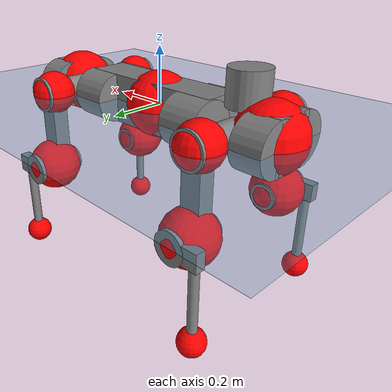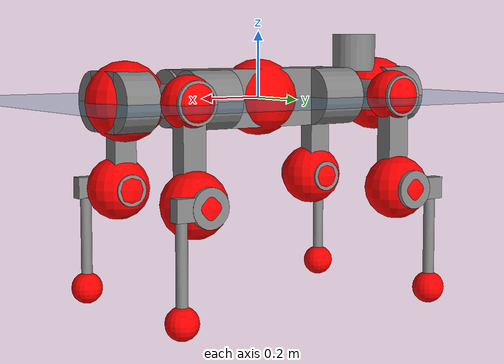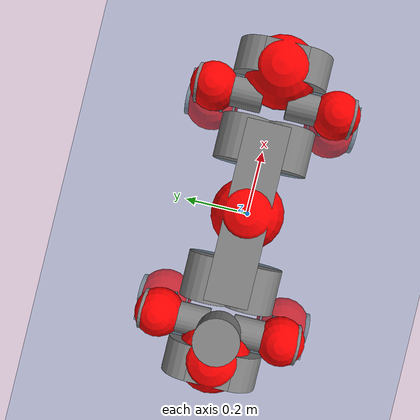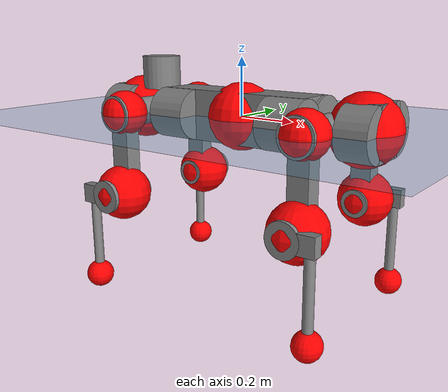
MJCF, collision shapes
<mujoco model="anymal_c">
  <compiler angle="radian" assetdir="assets" balanceinertia="true" inertiafromgeom="false"/>

  <option timestep="0.005" density="1.2" viscosity="2e-05"/>

  <size nkey="1"/>

  <visual>
    <quality shadowsize="8192"/>
    <map shadowclip="0.5"/>
  </visual>

  <default>
    <default class="/">
      <material specular="0" shininess="0.25"/>
      <geom contype="0" conaffinity="0" group="1" solref="-1000 -80"/>
      <site size="0.01 0.005 0.005" group="5"/>
      <general forcelimited="true" forcerange="-80 80" biastype="affine" gainprm="80" biasprm="0 -80 -2"/>
      <default class="anymal_c">
        <joint armature="0.01" damping="0.01" frictionloss="0.1"/>
        <default class="visual">
          <geom type="mesh" group="2"/>
          <default class="visual_zflip"/>
        </default>
        <default class="collision">
          <geom type="cylinder" group="3"/>
          <default class="foot">
            <geom size="0.03 0 0" type="sphere" condim="6" priority="1" friction="0.8 0.02 0.01" solimp="0.015 1 0.03"/>
          </default>
        </default>
      </default>
      <default class="reward_collision_sphere">
        <geom group="5" rgba="1 0 0 1"/>
      </default>
    </default>
  </default>

  <asset>
    <texture type="skybox" colorspace="auto" name="//unnamed_texture_0" builtin="gradient" rgb1="0.95 0.95 0.95" rgb2="0.95 0.95 0.95" width="100" height="600"/>
    <texture type="2d" colorspace="auto" name="texplane" builtin="checker" rgb1="0.345 0.575 0.748" rgb2="0.345 0.575 0.748" markrgb="1 1 1" width="512" height="512"/>
    <texture type="2d" colorspace="linear" name="base" file="base.png"/>
    <texture type="2d" colorspace="linear" name="top_shell" file="top_shell.png"/>
    <texture type="2d" colorspace="linear" name="bottom_shell" file="bottom_shell.png"/>
    <texture type="2d" colorspace="linear" name="remote" file="remote.png"/>
    <texture type="2d" colorspace="linear" name="hatch" file="hatch.png"/>
    <texture type="2d" colorspace="linear" name="handle" file="handle.png"/>
    <texture type="2d" colorspace="linear" name="face" file="face.png"/>
    <texture type="2d" colorspace="linear" name="battery" file="battery.png"/>
    <texture type="2d" colorspace="linear" name="lidar_cage" file="lidar_cage.png"/>
    <texture type="2d" colorspace="linear" name="depth_camera" file="depth_camera.png"/>
    <texture type="2d" colorspace="linear" name="wide_angle_camera" file="wide_angle_camera.png"/>
    <texture type="2d" colorspace="linear" name="lidar" file="lidar.png"/>
    <texture type="2d" colorspace="linear" name="drive" file="drive.png"/>
    <texture type="2d" colorspace="linear" name="hip_l" file="hip_l.png"/>
    <texture type="2d" colorspace="linear" name="shank_l" file="shank_l.png"/>
    <texture type="2d" colorspace="linear" name="foot" file="foot.png"/>
    <texture type="2d" colorspace="linear" name="thigh" file="thigh.png"/>
    <texture type="2d" colorspace="linear" name="shank_r" file="shank_r.png"/>
    <texture type="2d" colorspace="linear" name="hip_r" file="hip_r.png"/>
    <material name="MatPlane" class="/" texture="texplane" texuniform="true" texrepeat="2 2" specular="0.9" shininess="0.5"/>
    <material name="black_plastic" class="/" rgba="0.007 0.007 0.007 1"/>
    <material name="green" class="/" rgba="0.052 0.178 0.033 1"/>
    <material name="red" class="/" rgba="0.178 0.006 0.005 1"/>
    <material name="yellow" class="/" rgba="0.178 0.119 0.006 1"/>
    <material name="lwl" class="/" rgba="0.8 0.8 0.8 1"/>
    <material name="base" class="/" texture="base"/>
    <material name="top_shell" class="/" texture="top_shell"/>
    <material name="bottom_shell" class="/" texture="bottom_shell"/>
    <material name="hip_l" class="/" texture="hip_l"/>
    <material name="thigh" class="/" texture="thigh"/>
    <material name="shank_l" class="/" texture="shank_l"/>
    <material name="foot" class="/" texture="foot"/>
    <material name="hip_r" class="/" texture="hip_r"/>
    <material name="shank" class="/" texture="shank_r"/>
    <material name="hatch" class="/" texture="hatch"/>
    <material name="remote" class="/" texture="remote"/>
    <material name="handle" class="/" texture="handle"/>
    <material name="face" class="/" texture="face"/>
    <material name="depth_camera" class="/" texture="depth_camera"/>
    <material name="wide_angle_camera" class="/" texture="wide_angle_camera"/>
    <material name="battery" class="/" texture="battery"/>
    <material name="lidar_cage" class="/" texture="lidar_cage"/>
    <material name="lidar" class="/" texture="lidar"/>
    <material name="drive" class="/" texture="drive"/>
    <mesh name="base_0" class="/" file="base_0.obj"/>
    <mesh name="base_1" class="/" file="base_1.obj"/>
    <mesh name="base_2" class="/" file="base_2.obj"/>
    <mesh name="base_3" class="/" file="base_3.obj"/>
    <mesh name="base_4" class="/" file="base_4.obj"/>
    <mesh name="base_5" class="/" file="base_5.obj"/>
    <mesh name="top_shell" class="/" file="top_shell.obj"/>
    <mesh name="bottom_shell" class="/" file="bottom_shell.obj"/>
    <mesh name="remote" class="/" file="remote.obj"/>
    <mesh name="handle" class="/" file="handle.obj"/>
    <mesh name="face" class="/" file="face.obj"/>
    <mesh name="wide_angle_camera" class="/" file="wide_angle_camera.obj"/>
    <mesh name="depth_camera" class="/" file="depth_camera.obj"/>
    <mesh name="battery" class="/" file="battery.obj"/>
    <mesh name="lidar_cage" class="/" file="lidar_cage.obj"/>
    <mesh name="lidar" class="/" file="lidar.obj"/>
    <mesh name="drive" class="/" file="drive.obj"/>
    <mesh name="hip_l" class="/" file="hip_l.obj"/>
    <mesh name="thigh" class="/" file="thigh.obj"/>
    <mesh name="shank_l" class="/" file="shank_l.obj"/>
    <mesh name="foot" class="/" file="foot.obj"/>
    <mesh name="hip_r" class="/" file="hip_r.obj"/>
    <mesh name="hatch" class="/" file="hatch.obj"/>
    <mesh name="shank_r" class="/" file="shank_r.obj"/>
  </asset>

  <worldbody>
    <geom name="floor" class="/" size="100 100 0.125" type="plane" group="0" material="MatPlane"/>
    <light name="toplight_shadow" class="/" pos="0 0 5" dir="0.0990148 0.0990148 -0.990148" type="directional" ambient="0.04 0.04 0.04" diffuse="0.55 0.55 0.55" specular="0.12 0.12 0.12"/>
    <light name="toplight_fill" class="/" pos="0 0 5" dir="0.0990148 0.0990148 -0.990148" type="directional" castshadow="false" ambient="0.04 0.04 0.04" diffuse="0.3 0.3 0.3" specular="0.08 0.08 0.08"/>
    <body name="trunk" childclass="anymal_c" pos="0.000508709 0.000475771 0.000942361" quat="1 -0.000194932 0.00031727 -0.000135436">
      <inertial pos="0.00336174 -0.000921009 0.0490358" quat="0.500131 0.499691 0.499766 0.500412" mass="17.7452" diaginertia="0.724263 0.381992 0.215391"/>
      <joint name="//unnamed_joint_0" type="free" armature="0" damping="0" frictionloss="0"/>
      <geom name="//unnamed_geom_1" class="visual" material="green" mesh="base_0"/>
      <geom name="//unnamed_geom_2" class="visual" material="yellow" mesh="base_1"/>
      <geom name="//unnamed_geom_3" class="visual" material="red" mesh="base_2"/>
      <geom name="//unnamed_geom_4" class="visual" material="black_plastic" mesh="base_3"/>
      <geom name="//unnamed_geom_5" class="visual" material="lwl" mesh="base_4"/>
      <geom name="//unnamed_geom_6" class="visual" material="base" mesh="base_5"/>
      <geom name="trunk_1" class="collision" size="0.282115 0.0680966 0.0875528" type="box"/>
      <geom name="trunk_2" class="collision" size="0.0875528 0.0705286" pos="0.222028 0.063313 0" quat="0.707107 0 0.707107 0"/>
      <geom name="trunk_3" class="collision" size="0.0875528 0.0705286" pos="-0.222028 0.063313 0" quat="0.707107 0 0.707107 0"/>
      <geom name="trunk_4" class="collision" size="0.0875528 0.0705286" pos="0.222028 -0.063313 0" quat="0.707107 0 0.707107 0"/>
      <geom name="trunk_5" class="collision" size="0.0875528 0.0705286" pos="-0.222028 -0.063313 0" quat="0.707107 0 0.707107 0"/>
      <geom name="//unnamed_geom_12" class="visual" material="top_shell" mesh="top_shell"/>
      <geom name="//unnamed_geom_13" class="visual" material="bottom_shell" mesh="bottom_shell"/>
      <geom name="//unnamed_geom_14" class="visual" material="remote" mesh="remote"/>
      <geom name="//unnamed_geom_15" class="visual" material="handle" mesh="handle"/>
      <geom name="//unnamed_geom_16" class="visual" pos="0.42313 0 0" quat="1 0 0 0" material="face" mesh="face"/>
      <geom name="trunk_6" class="collision" size="0.0535045 0.0680966 0.0875528" pos="0.479275 0 0" type="box"/>
      <geom name="//unnamed_geom_18" class="collision" size="0.0875528 0.0535045" pos="0.479275 0.063313 0" quat="0.707107 0 0.707107 0"/>
      <geom name="//unnamed_geom_19" class="collision" size="0.0875528 0.0535045" pos="0.479275 -0.063313 0" quat="0.707107 0 0.707107 0"/>
      <geom name="//unnamed_geom_20" class="visual" pos="0.47126 0 -0.0287892" quat="0.965926 0 0.258819 0" material="depth_camera" mesh="depth_camera"/>
      <geom name="//unnamed_geom_21" class="visual" pos="0.523681 0 0.0148672" material="wide_angle_camera" mesh="wide_angle_camera"/>
      <geom name="//unnamed_geom_22" class="visual_zflip" pos="-0.42313 0 0" quat="0 0 0 1" material="face" mesh="face"/>
      <geom name="trunk_7" class="collision" size="0.0535045 0.0680966 0.0875528" pos="-0.479275 0 0" quat="0 0 0 1" type="box"/>
      <geom name="//unnamed_geom_24" class="collision" size="0.0875528 0.0535045" pos="-0.479275 -0.063313 0" quat="0 -0.707107 0 0.707107"/>
      <geom name="//unnamed_geom_25" class="collision" size="0.0875528 0.0535045" pos="-0.479275 0.063313 0" quat="0 -0.707107 0 0.707107"/>
      <geom name="//unnamed_geom_26" class="visual" pos="-0.47126 0 -0.0287892" quat="0 -0.258819 0 0.965926" material="depth_camera" mesh="depth_camera"/>
      <geom name="//unnamed_geom_27" class="visual_zflip" pos="-0.523681 0 0.0148672" quat="0 0 0 1" material="wide_angle_camera" mesh="wide_angle_camera"/>
      <geom name="//unnamed_geom_28" class="visual" material="battery" mesh="battery"/>
      <geom name="//unnamed_geom_29" class="visual" pos="0 0.067628 0.029061" quat="0.683013 -0.183013 0.183013 0.683013" material="depth_camera" mesh="depth_camera"/>
      <geom name="//unnamed_geom_30" class="visual" pos="0 -0.067628 0.029061" quat="0.683013 0.183013 0.183013 -0.683013" material="depth_camera" mesh="depth_camera"/>
      <geom name="//unnamed_geom_31" class="visual" pos="-0.371578 0 0.0729955" quat="1 0 0 0" material="lidar_cage" mesh="lidar_cage"/>
      <geom name="trunk_8" class="collision" size="0.0680966 0.0583685" pos="-0.371578 0 0.132584"/>
      <geom name="//unnamed_geom_33" class="visual" pos="-0.371578 -4.57104e-05 0.141224" quat="0.707107 0 0 -0.707107" material="lidar" mesh="lidar"/>
      <geom name="//unnamed_geom_34" class="visual" pos="0.306144 0.0940965 -1.52948e-09" quat="0.258819 0.965926 0 0" material="drive" mesh="drive"/>
      <geom name="//unnamed_geom_35" class="visual" pos="0.306144 -0.0940965 1.52948e-09" quat="0.258819 -0.965926 0 0" material="drive" mesh="drive"/>
      <geom name="//unnamed_geom_36" class="visual" pos="-0.306144 0.0940965 1.52948e-09" quat="0 0 0.965926 -0.258819" material="drive" mesh="drive"/>
      <geom name="//unnamed_geom_37" class="visual" pos="-0.306144 -0.0940965 -1.52948e-09" quat="0 0 -0.965926 -0.258819" material="drive" mesh="drive"/>
      <geom name="//unnamed_geom_38" class="visual" pos="0.118415 0 0.0724989" quat="1 0 0 0" material="hatch" mesh="hatch"/>
      <geom name="//unnamed_geom_39" class="reward_collision_sphere" size="0.116737"/>
      <geom name="//unnamed_geom_40" class="reward_collision_sphere" size="0.116737" pos="0.459369 0 0"/>
      <geom name="//unnamed_geom_41" class="reward_collision_sphere" size="0.116737" pos="-0.459369 0 0"/>
      <site name="imu" pos="0.249309 5.98795e-05 0.0485578" size="0.00972809"/>
      <camera name="track" pos="0 -1.80894 0" quat="0.707107 0.707107 0 0" mode="trackcom"/>
      <camera name="ego_camera" pos="0.459369 0 -0.0397254" quat="-0.5 -0.5 0.5 0.5"/>
      <body name="LF_HIP" pos="0.30647 0.0939674 0.000711781" quat="0.258546 0.965999 0.000449457 -0.000362116">
        <inertial pos="0.0588337 -0.0136693 -0.00813759" quat="-0.128917 0.709699 -0.133354 0.679651" mass="2.58903" diaginertia="0.00656867 0.00301004 0.00317562"/>
        <joint name="LF_HAA" pos="0 0 0" axis="0.999998 -0.00148859 0.00162141" range="-0.703952 0.489868" armature="0.00958418" damping="0.0111884" frictionloss="0.0947827"/>
        <geom name="//unnamed_geom_42" class="visual" pos="0 -8.99725e-05 1.47779e-05" quat="0.258819 -0.965926 0 0" material="hip_l" mesh="hip_l"/>
        <geom name="//unnamed_geom_43" class="visual" pos="0.0611471 -0.0725923 -0.042567" quat="0.183013 -0.683013 0.683013 0.183013" material="drive" mesh="drive"/>
        <geom name="//unnamed_geom_44" class="collision" size="0.0486404 0.0680966" pos="0.0611471 -0.0108173 -0.0068576" quat="-0.353553 -0.612372 0.612372 -0.353553"/>
        <body name="LF_THIGH" pos="0.0614947 -0.0661418 -0.0401588" quat="0.182983 -0.682965 0.68305 0.183082">
          <inertial pos="0.0318832 -0.000727729 -0.245457" quat="0.993124 -0.0050349 -0.0808651 0.0845025" mass="2.79785" diaginertia="0.0336164 0.0182361 0.00405124"/>
          <joint name="LF_HFE" pos="0 0 0" axis="0.999997 -0.000819732 -0.00236155" range="-3.14212 3.16347" armature="0.0100923" damping="0.00137785" frictionloss="0.0975007"/>
          <geom name="//unnamed_geom_45" class="visual" pos="0.00231489 3.64772e-06 0" quat="0.707107 0 0 -0.707107" material="thigh" mesh="thigh"/>
          <geom name="//unnamed_geom_46" class="collision" size="0.0632326 0.0389124" pos="0.0408328 0 0" quat="0.5 0.5 -0.5 -0.5"/>
          <geom name="//unnamed_geom_47" class="collision" size="0.0364803 0.0291843 0.137472" pos="0.0306246 0 -0.140344" quat="0.707107 0 0 -0.707107" type="box"/>
          <geom name="//unnamed_geom_48" class="visual" pos="0.102388 0 -0.283044" quat="1 0 0 0" material="drive" mesh="drive"/>
          <geom name="//unnamed_geom_49" class="collision" size="0.0486404 0.0680966" pos="0.0309308 0 -0.283044" quat="0.707107 0 0.707107 0"/>
          <geom name="//unnamed_geom_50" class="reward_collision_sphere" size="0.0778247" pos="0.0255205 0 0"/>
          <body name="LF_SHANK" pos="0.104005 0.000816377 -0.28358" quat="1 -9.48012e-06 -2.26517e-06 -9.74276e-07">
            <inertial pos="0.00557979 -0.0544607 -0.0807764" quat="0.992846 -0.116628 -0.00129125 -0.0255573" mass="0.546544" diaginertia="0.0111749 0.00556722 0.00107887"/>
            <joint name="LF_KFE" pos="0 0 0" axis="1 0.000190869 -0.000285775" range="-3.15456 3.1299" armature="0.00970407" damping="0.00967041" frictionloss="0.0954181"/>
            <geom name="//unnamed_geom_51" class="visual" pos="0.000754834 0.00402482 0" quat="0.707107 0 0 -0.707107" material="shank_l" mesh="shank_l"/>
            <geom name="LF_kfe_act" class="collision" size="0.0583685 0.0194562" pos="0.0204164 0 0" quat="0.5 0.5 -0.5 -0.5"/>
            <geom name="//unnamed_geom_53" class="collision" size="0.0559355 0.0328323 0.0184834" pos="0.0204164 -0.0520062 0" quat="0.5 0.5 -0.5 -0.5" type="box"/>
            <geom name="//unnamed_geom_54" class="visual" pos="0.0133215 -0.0782512 -0.33565" quat="0.382683 0 0 -0.92388" material="foot" mesh="foot"/>
            <geom name="LF_calf" class="collision" size="0.0170242 0.137411" pos="0.0133217 -0.0795482 -0.167825" quat="0.707107 0 0 -0.707107"/>
            <geom name="LF_foot" class="foot" size="0.0285778" pos="0.0133217 -0.0795482 -0.313305" quat="0.707107 0 0 -0.707107"/>
            <geom name="//unnamed_geom_57" class="reward_collision_sphere" size="0.0972809" pos="-0.051041 0 0"/>
            <geom name="//unnamed_geom_58" class="reward_collision_sphere" size="0.0486404" pos="0.0133217 -0.0795482 -0.313305"/>
            <site name="LF_foot" class="foot" pos="0.0133217 -0.0795482 -0.313305" quat="0.707107 0 0 -0.707107" size="0.00972809"/>
          </body>
        </body>
      </body>
      <body name="RF_HIP" pos="0.305739 -0.0957261 0.000984877" quat="0.258812 -0.965928 8.58e-06 1.46696e-07">
        <inertial pos="0.0578196 0.0149396 -0.00836169" quat="0.139183 0.67846 0.127166 0.710034" mass="2.59624" diaginertia="0.00665336 0.00298665 0.0032386"/>
        <joint name="RF_HAA" pos="0 0 0" axis="0.999998 -0.00129967 0.00161032" range="-0.501463 0.716373" armature="0.00970994" damping="0.00874758" frictionloss="0.0954131"/>
        <geom name="//unnamed_geom_59" class="visual" pos="0 8.99718e-05 1.47779e-05" quat="0.258819 0.965926 0 0" material="hip_r" mesh="hip_r"/>
        <geom name="//unnamed_geom_60" class="visual" pos="0.0611471 0.0725923 -0.042567" quat="0.183013 0.683013 0.683013 -0.183013" material="drive" mesh="drive"/>
        <geom name="//unnamed_geom_61" class="collision" size="0.0486404 0.0680966" pos="0.0611471 0.0108173 -0.0068576" quat="-0.353553 0.612372 0.612372 0.353553"/>
        <body name="RF_THIGH" pos="0.0605615 0.0652673 -0.0416006" quat="0.183 0.683019 0.68301 -0.183015">
          <inertial pos="0.0316307 -0.00012326 -0.244787" quat="0.992614 0.000896508 -0.0852222 0.0863406" mass="2.85303" diaginertia="0.0343308 0.0182974 0.00408929"/>
          <joint name="RF_HFE" pos="0 0 0" axis="1 0.000872849 0.000307061" stiffness="0.00566654" range="-3.16125 3.13843" armature="0.00977637" damping="0.0095112" frictionloss="0.0989859"/>
          <geom name="//unnamed_geom_62" class="visual" pos="0.00231489 3.64772e-06 0" quat="0.707107 0 0 -0.707107" material="thigh" mesh="thigh"/>
          <geom name="//unnamed_geom_63" class="collision" size="0.0632326 0.0389124" pos="0.0408328 0 0" quat="0.5 0.5 0.5 0.5"/>
          <geom name="//unnamed_geom_64" class="collision" size="0.0364803 0.0291843 0.137472" pos="0.0306246 0 -0.140344" quat="0.707107 0 0 0.707107" type="box"/>
          <geom name="//unnamed_geom_65" class="visual" pos="0.102388 0 -0.283044" quat="1 0 0 0" material="drive" mesh="drive"/>
          <geom name="//unnamed_geom_66" class="collision" size="0.0486404 0.0680966" pos="0.0309308 0 -0.283044" quat="0.707107 0 0.707107 0"/>
          <geom name="//unnamed_geom_67" class="reward_collision_sphere" size="0.0778247" pos="0.0255205 0 0"/>
          <body name="RF_SHANK" pos="0.101999 0.000536963 -0.282939" quat="1 -1.80227e-06 1.74306e-05 -6.16097e-06">
            <inertial pos="0.00617278 0.0551102 -0.0782852" quat="0.992836 0.115733 -0.00342758 0.029512" mass="0.532241" diaginertia="0.010937 0.00557831 0.00105092"/>
            <joint name="RF_KFE" pos="0 0 0" axis="0.999999 -0.000426056 0.001478" range="-3.1364 3.15582" armature="0.00953812" damping="0.00855093" frictionloss="0.0974585"/>
            <geom name="//unnamed_geom_68" class="visual" pos="0.00075483 -0.00402481 0" quat="0.707107 0 0 0.707107" material="shank" mesh="shank_r"/>
            <geom name="RF_kfe_act" class="collision" size="0.0583685 0.0194562" pos="0.0204164 0 0" quat="0.5 0.5 0.5 0.5"/>
            <geom name="//unnamed_geom_70" class="collision" size="0.0559355 0.0328323 0.0184834" pos="0.0204164 0.0520062 0" quat="0.5 0.5 0.5 0.5" type="box"/>
            <geom name="//unnamed_geom_71" class="visual" pos="0.0133219 0.0782512 -0.33565" quat="0.382683 0 0 0.92388" material="foot" mesh="foot"/>
            <geom name="RF_calf" class="collision" size="0.0170242 0.137411" pos="0.0133217 0.0795482 -0.167825" quat="0.707107 0 0 0.707107"/>
            <geom name="RF_foot" class="foot" size="0.0292336" pos="0.0133217 0.0795482 -0.313305" quat="0.707107 0 0 0.707107"/>
            <geom name="//unnamed_geom_74" class="reward_collision_sphere" size="0.0972809" pos="-0.051041 0 0"/>
            <geom name="//unnamed_geom_75" class="reward_collision_sphere" size="0.0486404" pos="0.0133217 0.0795482 -0.313305"/>
            <site name="RF_foot" class="foot" pos="0.0133217 0.0795482 -0.313305" quat="0.707107 0 0 0.707107" size="0.00972809"/>
          </body>
        </body>
      </body>
      <body name="LH_HIP" pos="-0.306098 0.0950094 -0.000239824" quat="7.18146e-06 -3.01934e-05 0.965933 -0.258793">
        <inertial pos="0.058154 0.0135931 -0.00898023" quat="0.133378 0.679433 0.126954 0.710256" mass="2.5702" diaginertia="0.00649287 0.00298947 0.00316276"/>
        <joint name="LH_HAA" pos="0 0 0" axis="0.999999 0.00102786 0.000160732" range="-0.46792 0.73637" armature="0.00970174" damping="0.012855" frictionloss="0.10043"/>
        <geom name="//unnamed_geom_76" class="visual" pos="0 8.99718e-05 1.47779e-05" quat="-0.258819 -0.965926 0 0" material="hip_r" mesh="hip_r"/>
        <geom name="//unnamed_geom_77" class="visual" pos="0.0611471 0.0725923 -0.042567" quat="0.183013 0.683013 0.683013 -0.183013" material="drive" mesh="drive"/>
        <geom name="//unnamed_geom_78" class="collision" size="0.0486404 0.0680966" pos="0.0611471 0.0108173 -0.0068576" quat="-0.353553 0.612372 0.612372 0.353553"/>
        <body name="LH_THIGH" pos="0.0603325 0.0652315 -0.0415023" quat="0.182941 0.68308 0.682929 -0.183148">
          <inertial pos="0.0310331 0.000380534 -0.245245" quat="0.992662 -0.00392589 -0.0794985 0.0910291" mass="2.78241" diaginertia="0.0328203 0.017867 0.00396853"/>
          <joint name="LH_HFE" pos="0 0 0" axis="0.999994 0.00324249 -0.000990345" stiffness="0.00306973" range="-3.15525 3.13148" armature="0.00944375" damping="0.00698753" frictionloss="0.0972009"/>
          <geom name="//unnamed_geom_79" class="visual" pos="0.00231489 3.64772e-06 0" quat="0.707107 0 0 -0.707107" material="thigh" mesh="thigh"/>
          <geom name="//unnamed_geom_80" class="collision" size="0.0632326 0.0389124" pos="0.0408328 0 0" quat="0.5 0.5 -0.5 -0.5"/>
          <geom name="//unnamed_geom_81" class="collision" size="0.0364803 0.0291843 0.137472" pos="0.0306246 0 -0.140344" quat="0.707107 0 0 -0.707107" type="box"/>
          <geom name="//unnamed_geom_82" class="visual" pos="0.102388 0 -0.283044" quat="1 0 0 0" material="drive" mesh="drive"/>
          <geom name="//unnamed_geom_83" class="collision" size="0.0486404 0.0680966" pos="0.0309308 0 -0.283044" quat="0.707107 0 0.707107 0"/>
          <geom name="//unnamed_geom_84" class="reward_collision_sphere" size="0.0778247" pos="0.0255205 0 0"/>
          <body name="LH_SHANK" pos="0.103131 -0.00136228 -0.28312" quat="1 4.79347e-05 1.69792e-05 5.62892e-05">
            <inertial pos="0.0046458 0.0561935 -0.0807712" quat="0.992942 0.115849 -0.00129937 0.0253835" mass="0.544201" diaginertia="0.0112878 0.00554419 0.00108758"/>
            <joint name="LH_KFE" pos="0 0 0" axis="1 -7.81484e-05 -0.00069624" range="-3.14853 3.14084" armature="0.00999928" damping="0.0119321" frictionloss="0.0929158"/>
            <geom name="//unnamed_geom_85" class="visual" pos="0.00075483 -0.00402481 0" quat="-0.707107 0 0 -0.707107" material="shank" mesh="shank_r"/>
            <geom name="LH_kfe_act" class="collision" size="0.0583685 0.0194562" pos="0.0204164 0 0" quat="0.5 0.5 -0.5 -0.5"/>
            <geom name="//unnamed_geom_87" class="collision" size="0.0559355 0.0328323 0.0184834" pos="0.0204164 0.0520062 0" quat="0.5 0.5 -0.5 -0.5" type="box"/>
            <geom name="//unnamed_geom_88" class="visual" pos="0.0133219 0.0782512 -0.33565" quat="-0.382683 0 0 -0.92388" material="foot" mesh="foot"/>
            <geom name="LH_calf" class="collision" size="0.0170242 0.137411" pos="0.0133217 0.0795482 -0.167825" quat="0.707107 0 0 -0.707107"/>
            <geom name="LH_foot" class="foot" size="0.0309166" pos="0.0133217 0.0795482 -0.313305" quat="0.707107 0 0 -0.707107"/>
            <geom name="//unnamed_geom_91" class="reward_collision_sphere" size="0.0972809" pos="-0.051041 0 0"/>
            <geom name="//unnamed_geom_92" class="reward_collision_sphere" size="0.0486404" pos="0.0133217 0.0795482 -0.313305"/>
            <site name="LH_foot" class="foot" pos="0.0133217 0.0795482 -0.313305" quat="0.707107 0 0 -0.707107" size="0.00972809"/>
          </body>
        </body>
      </body>
      <body name="RH_HIP" pos="-0.306081 -0.0932279 0.000135642" quat="0.000163948 -0.000272826 -0.965942 -0.258757">
        <inertial pos="0.0577631 -0.0134192 -0.00794839" quat="-0.127992 0.709736 -0.135292 0.679403" mass="2.4925" diaginertia="0.00634672 0.00291178 0.00313065"/>
        <joint name="RH_HAA" pos="0 0 0" axis="0.999999 0.000981436 -0.00137319" range="-0.731973 0.492969" armature="0.0101871" damping="0.00755074" frictionloss="0.094839"/>
        <geom name="//unnamed_geom_93" class="visual" pos="0 -8.99725e-05 1.47779e-05" quat="-0.258819 0.965926 0 0" material="hip_l" mesh="hip_l"/>
        <geom name="//unnamed_geom_94" class="visual" pos="0.0611471 -0.0725923 -0.042567" quat="-0.183013 0.683013 -0.683013 -0.183013" material="drive" mesh="drive"/>
        <geom name="//unnamed_geom_95" class="collision" size="0.0486404 0.0680966" pos="0.0611471 -0.0108173 -0.0068576" quat="0.353553 0.612372 -0.612372 0.353553"/>
        <body name="RH_THIGH" pos="0.0613961 -0.0655943 -0.0409996" quat="-0.18303 0.683055 -0.682954 -0.183058">
          <inertial pos="0.032563 -0.000577976 -0.24381" quat="0.993177 -0.00522883 -0.0806223 0.0840914" mass="2.82265" diaginertia="0.0331317 0.0180474 0.00403902"/>
          <joint name="RH_HFE" pos="0 0 0" axis="0.999986 -0.00174707 0.0049312" range="-3.1588 3.15793" armature="0.0095851" damping="0.00783882" frictionloss="0.096762"/>
          <geom name="//unnamed_geom_96" class="visual" pos="0.00231489 3.64772e-06 0" quat="0.707107 0 0 -0.707107" material="thigh" mesh="thigh"/>
          <geom name="//unnamed_geom_97" class="collision" size="0.0632326 0.0389124" pos="0.0408328 0 0" quat="0.5 0.5 0.5 0.5"/>
          <geom name="//unnamed_geom_98" class="collision" size="0.0364803 0.0291843 0.137472" pos="0.0306246 0 -0.140344" quat="0.707107 0 0 0.707107" type="box"/>
          <geom name="//unnamed_geom_99" class="visual" pos="0.102388 0 -0.283044" quat="1 0 0 0" material="drive" mesh="drive"/>
          <geom name="//unnamed_geom_100" class="collision" size="0.0486404 0.0680966" pos="0.0309308 0 -0.283044" quat="0.707107 0 0.707107 0"/>
          <geom name="//unnamed_geom_101" class="reward_collision_sphere" size="0.0778247" pos="0.0255205 0 0"/>
          <body name="RH_SHANK" pos="0.102926 0.000750469 -0.283194" quat="1 4.03868e-06 -0.000211187 5.77284e-05">
            <inertial pos="0.00516931 -0.0552402 -0.0800615" quat="0.993122 -0.114719 -0.000197205 -0.0234187" mass="0.548484" diaginertia="0.0113062 0.00563756 0.00108783"/>
            <joint name="RH_KFE" pos="0 0 0" axis="0.999956 0.00935269 -0.000168694" range="-3.13018 3.118" armature="0.010129" damping="0" frictionloss="0.0972004"/>
            <geom name="//unnamed_geom_102" class="visual" pos="0.000754834 0.00402482 0" quat="0.707107 0 0 -0.707107" material="shank_l" mesh="shank_l"/>
            <geom name="RH_kfe_act" class="collision" size="0.0583685 0.0194562" pos="0.0204164 0 0" quat="0.5 0.5 0.5 0.5"/>
            <geom name="//unnamed_geom_104" class="collision" size="0.0559355 0.0328323 0.0184834" pos="0.0204164 -0.0520062 0" quat="0.5 0.5 0.5 0.5" type="box"/>
            <geom name="//unnamed_geom_105" class="visual" pos="0.0133215 -0.0782512 -0.33565" quat="0.382683 0 0 -0.92388" material="foot" mesh="foot"/>
            <geom name="RH_calf" class="collision" size="0.0170242 0.137411" pos="0.0133217 -0.0795482 -0.167825" quat="0.707107 0 0 0.707107"/>
            <geom name="RH_foot" class="foot" size="0.0287254" pos="0.0133217 -0.0795482 -0.313305" quat="0.707107 0 0 0.707107"/>
            <geom name="//unnamed_geom_108" class="reward_collision_sphere" size="0.0972809" pos="-0.051041 0 0"/>
            <geom name="//unnamed_geom_109" class="reward_collision_sphere" size="0.0486404" pos="0.0133217 -0.0795482 -0.313305"/>
            <site name="RH_foot" class="foot" pos="0.0133217 -0.0795482 -0.313305" quat="0.707107 0 0 0.707107" size="0.00972809"/>
          </body>
        </body>
      </body>
    </body>
  </worldbody>

  <contact>
    <pair class="/" geom1="floor" geom2="LF_foot" name="//unnamed_contact_0"/>
    <pair class="/" geom1="floor" geom2="RF_foot" name="//unnamed_contact_1"/>
    <pair class="/" geom1="floor" geom2="LH_foot" name="//unnamed_contact_2"/>
    <pair class="/" geom1="floor" geom2="RH_foot" name="//unnamed_contact_3"/>
  </contact>

  <actuator>
    <general name="LF_HAA" class="/" joint="LF_HAA" forcerange="-78.9316 78.9316" gainprm="80.7536" biasprm="0 -80.7536 -2.00563"/>
    <general name="LF_HFE" class="/" joint="LF_HFE" forcerange="-79.2434 79.2434" gainprm="80.7536" biasprm="0 -80.7536 -2.00563"/>
    <general name="LF_KFE" class="/" joint="LF_KFE" forcerange="-77.0832 77.0832" gainprm="80.7536" biasprm="0 -80.7536 -2.00563"/>
    <general name="RF_HAA" class="/" joint="RF_HAA" forcerange="-79.6527 79.6527" gainprm="80.7536" biasprm="0 -80.7536 -2.00563"/>
    <general name="RF_HFE" class="/" joint="RF_HFE" forcerange="-76.9449 76.9449" gainprm="80.7536" biasprm="0 -80.7536 -2.00563"/>
    <general name="RF_KFE" class="/" joint="RF_KFE" forcerange="-82.9095 82.9095" gainprm="80.7536" biasprm="0 -80.7536 -2.00563"/>
    <general name="LH_HAA" class="/" joint="LH_HAA" forcerange="-81.1255 81.1255" gainprm="80.7536" biasprm="0 -80.7536 -2.00563"/>
    <general name="LH_HFE" class="/" joint="LH_HFE" forcerange="-75.3557 75.3557" gainprm="80.7536" biasprm="0 -80.7536 -2.00563"/>
    <general name="LH_KFE" class="/" joint="LH_KFE" forcerange="-80.1141 80.1141" gainprm="80.7536" biasprm="0 -80.7536 -2.00563"/>
    <general name="RH_HAA" class="/" joint="RH_HAA" forcerange="-78.5279 78.5279" gainprm="80.7536" biasprm="0 -80.7536 -2.00563"/>
    <general name="RH_HFE" class="/" joint="RH_HFE" forcerange="-74.3982 74.3982" gainprm="80.7536" biasprm="0 -80.7536 -2.00563"/>
    <general name="RH_KFE" class="/" joint="RH_KFE" forcerange="-78.0441 78.0441" gainprm="80.7536" biasprm="0 -80.7536 -2.00563"/>
  </actuator>

  <sensor>
    <gyro site="imu" name="imu_angular_velocity"/>
    <velocimeter site="imu" name="imu_linear_velocity"/>
    <framelinvel objtype="site" objname="LF_foot" name="LF_foot_global_linear_velocity"/>
    <framelinvel objtype="site" objname="RF_foot" name="RF_foot_global_linear_velocity"/>
    <framelinvel objtype="site" objname="LH_foot" name="LH_foot_global_linear_velocity"/>
    <framelinvel objtype="site" objname="RH_foot" name="RH_foot_global_linear_velocity"/>
  </sensor>

  <keyframe>
    <key name="home" qpos="0 0 0.55 1 0 0 0 0 0.4 -0.8 0 -0.4 0.8 0 -0.4 0.8 0 0.4 -0.8"/>
  </keyframe>
</mujoco>
